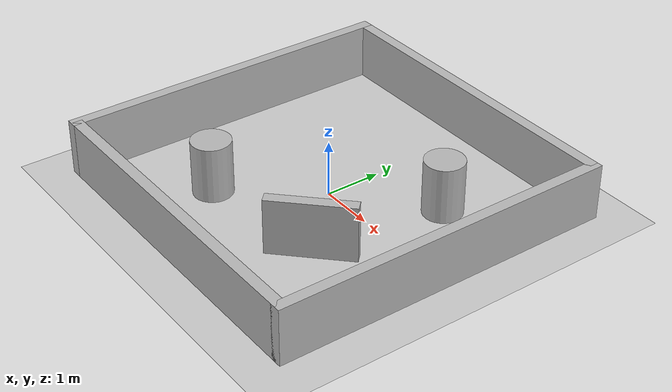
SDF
<?xml version="1.0" ?>
<sdf version="1.6">
  <world name="default">

    <include>
      <uri>model://sun</uri>
    </include>

    <include>
      <uri>model://ground_plane</uri>
    </include>

    <model name="outer_walls">
      <static>true</static>
      <link name="north_wall">
        <pose>3 0 0.5 0 0 0</pose>
        <collision name="collision">
          <geometry><box><size>0.2 6.2 1.0</size></box></geometry>
        </collision>
        <visual name="visual">
          <geometry><box><size>0.2 6.2 1.0</size></box></geometry>
        </visual>
      </link>
      <link name="south_wall">
        <pose>-3 0 0.5 0 0 0</pose>
        <collision name="collision">
          <geometry><box><size>0.2 6.2 1.0</size></box></geometry>
        </collision>
        <visual name="visual">
          <geometry><box><size>0.2 6.2 1.0</size></box></geometry>
        </visual>
      </link>
      <link name="east_wall">
        <pose>0 -3 0.5 0 0 0</pose>
        <collision name="collision">
          <geometry><box><size>6.0 0.2 1.0</size></box></geometry>
        </collision>
        <visual name="visual">
          <geometry><box><size>6.0 0.2 1.0</size></box></geometry>
        </visual>
      </link>
      <link name="west_wall">
        <pose>0 3 0.5 0 0 0</pose>
        <collision name="collision">
          <geometry><box><size>6.0 0.2 1.0</size></box></geometry>
        </collision>
        <visual name="visual">
          <geometry><box><size>6.0 0.2 1.0</size></box></geometry>
        </visual>
      </link>
    </model>

    <model name="inner_obstacles">
      <static>true</static>
      <link name="pillar_1">
        <pose>1.5 1.2 0.5 0 0 0</pose>
        <collision name="collision">
          <geometry><cylinder><radius>0.35</radius><length>1.0</length></cylinder></geometry>
        </collision>
        <visual name="visual">
          <geometry><cylinder><radius>0.35</radius><length>1.0</length></cylinder></geometry>
        </visual>
      </link>
      <link name="pillar_2">
        <pose>-1.2 -1.5 0.5 0 0 0</pose>
        <collision name="collision">
          <geometry><cylinder><radius>0.35</radius><length>1.0</length></cylinder></geometry>
        </collision>
        <visual name="visual">
          <geometry><cylinder><radius>0.35</radius><length>1.0</length></cylinder></geometry>
        </visual>
      </link>
      <link name="wall_divider">
        <pose>1.2 -1.2 0.5 0 0 0.785</pose>
        <collision name="collision">
          <geometry><box><size>1.5 0.2 1.0</size></box></geometry>
        </collision>
        <visual name="visual">
          <geometry><box><size>1.5 0.2 1.0</size></box></geometry>
        </visual>
      </link>
    </model>

  </world>
</sdf>
